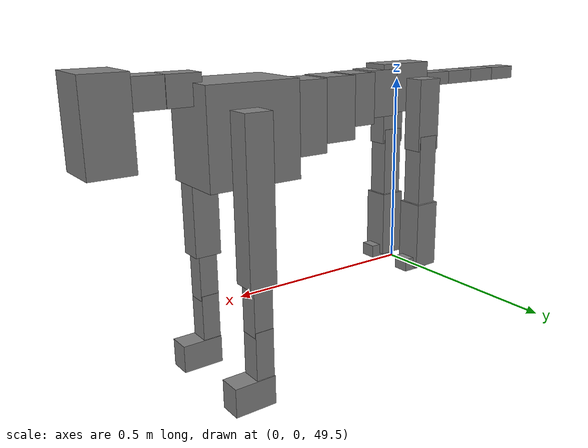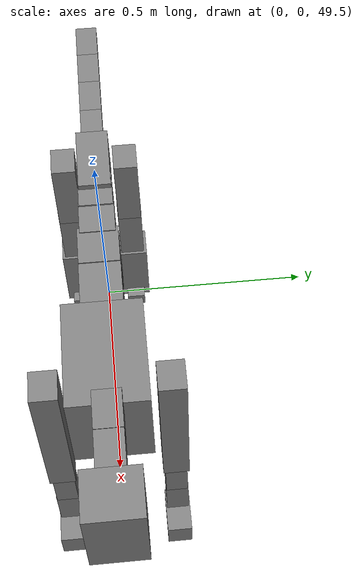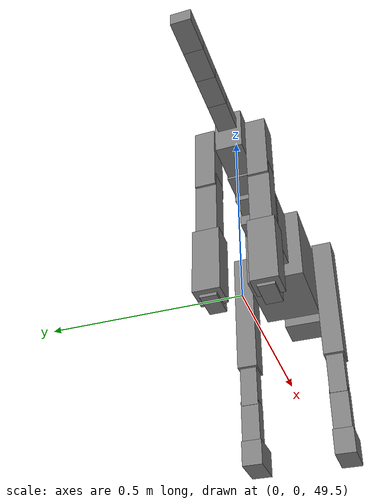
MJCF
<mujoco model="dog">

    <default>
        <joint armature="0.02" stiffness="1" damping="0.2" limited="true"/>
        <geom condim="3" friction="1 0.05 0.05" margin="0.01"/>
        <motor ctrllimited="true" ctrlrange="-1.0 1.0" forcelimited="true" gear="50"/>
    </default>

    <compiler inertiafromgeom="true" angle="radian"/>

    <option timestep="0.016" iterations="50" tolerance="1e-10" solver="Newton" jacobian="dense" cone="pyramidal"/>

    <size nconmax="20000" njmax="60000" nstack="5000000"/>
    <visual>
        <map force="0.1" zfar="30"/>
        <rgba haze="0.15 0.25 0.35 1"/>
        <quality shadowsize="2048"/>
        <global offwidth="800" offheight="800"/>
    </visual>

    <asset>
        <texture type="skybox" builtin="gradient" rgb1="0.3 0.5 0.7" rgb2="0 0 0" width="512" height="512"/>
        <texture name="texplane" type="2d" builtin="checker" rgb1=".2 .3 .4" rgb2=".1 0.15 0.2" width="512" height="512"
                 mark="cross" markrgb=".8 .8 .8"/>
        <texture name="texgeom" type="cube" builtin="flat" mark="cross" width="127" height="1278" rgb1="0.8 0.6 0.4"
                 rgb2="0.8 0.6 0.4" markrgb="1 1 1" random="0.01"/>

        <material name="matplane" reflectance="0.3" texture="texplane" texrepeat="1 1" texuniform="true"/>
        <material name="matgeom" texture="texgeom" texuniform="true" rgba="0.8 0.6 .4 1"/>
    </asset>

    <worldbody>
        <geom name="floor" pos="0 0 0" size="0 0 .25" type="plane" material="matplane" condim="3"/>

        <light directional="false" diffuse=".2 .2 .2" specular="0 0 0" pos="0 0 5" dir="0 0 -1" castshadow="false"/>
        <light mode="targetbodycom" target="torso" directional="false" diffuse=".8 .8 .8" specular="0.3 0.3 0.3"
               pos="0 0 4.0" dir="0 0 -1"/>

        <body name="root" pos="0 0 50">
            <freejoint name="root_1"/>
            <geom type="box" pos="0 0 -0.02" size="0.0774  0.0358  0.063" density="2030"/>

            <body name="spine1" pos="0.054 0 0">
                <joint name="spine1_y" axis="0 1 0" range="0 0.7" limited="true"/>
                <geom type="box" pos="0.02375 0 -0.03" size="0.04375  0.0375  0.05985" density="2030"/>

                <body name="spine2" pos="0.0612 0 0">
                    <joint name="spine2_y" axis="0 1 0" range="-0.15 0.15" limited="true"/>
                    <geom type="box" pos="0.03555  0  -0.04" size="0.04055  0.039  0.06615" density="2030"/>

                    <body name="spine3" pos="0.0730 0 0">
                        <joint name="spine3_y" axis="0 1 0" range="-0.15 0.15" limited="true"/>
                        <geom type="box" pos="0.03555  0  -0.057" size="0.04555  0.0445  0.081" density="2030"/>

                        <body name="spine4" pos="0.0780 0 0">
                            <joint name="spine4_y" axis="0 1 0" range="-0.15 0.15" limited="true"/>
                            <geom type="box" pos="0.05265  0  -0.07" size="0.05265  0.045  0.09135" density="2030"/>

                            <body name="torso" pos="0.1082 0 0">
                                <joint name="torso_y" axis="0 1 0" range="-0.15 0.15" limited="true"/>
                                <geom type="box" pos="0.11925  0  -0.085" size="0.11925  0.085  0.11745"
                                      density="2030"/>

                                <body name="neck1" pos="0.2160  0   0.0180">
                                    <joint name="neck1_y" axis="0 1 0" range="-1.2  -1" limited="true"/>
                                    <geom type="box" pos="0.0423  0  0" size="0.0423  0.03  0.036" density="2325"/>

                                    <body name="neck2" pos="0.0853  0  0">
                                        <joint name="neck2_y" axis="0 1 0" range="0.1  0" limited="true"/>
                                        <geom type="box" pos="0.0423  0  0" size="0.0423  0.03  0.036" density="2325"/>

                                        <body name="head" pos="0.0853  0  0">
                                            <joint name="head_y" axis="0 1 0" range="-0.3  -0.2" limited="true"/>
                                            <geom type="box" pos="0.0531  0  -0.055" size="0.0531  0.06  0.1044"
                                                  density="4030"/>

                                        </body>
                                    </body>
                                </body>

                                <body name="front_shoulder" pos="0.156  0   -0.0480">
                                    <joint name="front_shoulder_y" axis="0 1 0" range="-1 1.5" limited="true"/>
                                    <geom type="box" pos="0 0.13 -0.1703" size="0.0349  0.0298  0.1969" density="1158"/>
                                    <geom type="box" pos="0 -0.13 -0.1703" size="0.0349  0.0298  0.1969"
                                          density="1158"/>

                                    <body name="front_elbow" pos="0  0  -0.3405">
                                        <joint name="front_elbow_y" axis="0 1 0" range="-2 0" limited="true"/>
                                        <geom type="box" pos="0 0.13 -0.0734" size="0.0246  0.0252  0.0734"
                                              density="1081"/>
                                        <geom type="box" pos="0 -0.13 -0.0734" size="0.0246  0.0252  0.0734"
                                              density="1081"/>

                                        <body name="front_wrist" pos="0  0  -0.1468">
                                            <joint name="front_wrist_y" axis="0 1 0" range="-0.2 0" limited="true"/>
                                            <geom type="box" pos="0 0.13 -0.0615" size="0.0238  0.0265  0.0746"
                                                  density="1664"/>
                                            <geom type="box" pos="0 -0.13 -0.0615" size="0.0238  0.0265  0.0746"
                                                  density="1664"/>

                                            <body name="front_finger_end" pos="0  0  -0.1230">
                                                <joint name="front_finger_y" axis="0 1 0" range="-0.4 1"
                                                       limited="true"/>
                                                <geom type="box" pos="0.0293  0.13  -0.0216"
                                                      size="0.0537  0.0293  0.0366" density="1515"/>
                                                <geom type="box" pos="0.0293  -0.13  -0.0216"
                                                      size="0.0537  0.0293  0.0366" density="1515"/>

                                            </body>

                                        </body>
                                    </body>
                                </body>

                            </body>
                        </body>
                    </body>
                </body>
            </body>

            <body name="back_hip" pos="-0.03 0 -0.018">
                <joint name="back_hip_y" axis="0 1 0" range="-1.5 0.3" limited="true"/>
                <geom type="box" pos="0 0.07 -0.0712" size="0.0343  0.0269  0.0940" density="1154"/>
                <geom type="box" pos="0 -0.07 -0.0712" size="0.0343  0.0269  0.0940" density="1154"/>

                <body name="back_knee" pos="0  0  -0.1425">
                    <joint name="back_knee_y" axis="0 1 0" range="0 2.8" limited="true"/>
                    <geom type="box" pos="0 0.07 -0.0899" size="0.0283  0.0279  0.1055" density="1227"/>
                    <geom type="box" pos="0 -0.07 -0.0899" size="0.0283  0.0279  0.1055" density="1227"/>

                    <body name="back_ankle" pos="0  0  -0.1798">
                        <joint name="back_ankle_y" axis="0 1 0" range="-2.2 0" limited="true"/>
                        <geom type="box" pos="0 0.07 -0.0778" size="0.0346  0.0346  0.0891" density="1284"/>
                        <geom type="box" pos="0 -0.07 -0.0778" size="0.0346  0.0346  0.0891" density="1284"/>

                        <body name="back_toe_end" pos="0  0  -0.1557">
                            <joint name="back_toe_y" axis="0 1 0" range="-0.4 1" limited="true"/>
                            <geom type="box" pos="0.0215  0.07  -0.0022" size="0.0395  0.0215  0.0172" density="1515"/>
                            <geom type="box" pos="0.0215  -0.07  -0.0022" size="0.0395  0.0215  0.0172" density="1515"/>

                        </body>
                    </body>
                </body>
            </body>

            <body name="tail1" pos="-0.074 0 -0.006">
                <joint name="tail1_y" axis="0 1 0" range="-0.2 0.2" limited="true"/>
                <geom type="box" pos="-0.0536  0  0" size="0.045  0.025  0.0175" density="1587"/>

                <body name="tail2" pos="-0.09 0 0">
                    <joint name="tail2_y" axis="0 1 0" range="-0.2 0.2" limited="true"/>
                    <geom type="box" pos="-0.0536  0  0" size="0.045  0.025  0.0175" density="1587"/>

                    <body name="tail3" pos="-0.09 0 0">
                        <joint name="tail3_y" axis="0 1 0" range="-0.2 0.2" limited="true"/>
                        <geom type="box" pos="-0.0536  0  0" size="0.045  0.025  0.0175" density="1587"/>

                        <body name="tail4" pos="-0.09 0 0">
                            <joint name="tail4_y" axis="0 1 0" range="-0.2 0.2" limited="true"/>
                            <geom type="box" pos="-0.0536  0  0" size="0.045  0.025  0.0175" density="1587"/>

                        </body>
                    </body>
                </body>
            </body>
        </body>
    </worldbody>

    <actuator>
        <motor joint="spine1_y" forcerange="-150 150     "/>
        <motor joint="spine2_y" forcerange="-150 150     "/>
        <motor joint="spine3_y" forcerange="-150 150     "/>
        <motor joint="spine4_y" forcerange="-150 150     "/>
        <motor joint="torso_y" forcerange="-150 150     "/>
        <motor joint="neck1_y" forcerange="-100 100       "/>
        <motor joint="neck2_y" forcerange="-100 100       "/>
        <motor joint="head_y" forcerange="-150 150       "/>
        <motor joint="front_shoulder_y" forcerange="-168.63 130.27"/>
        <motor joint="front_elbow_y" forcerange="-148.26 134.91"/>
        <motor joint="front_wrist_y" forcerange="-105.33 106.64"/>
        <motor joint="front_finger_y" forcerange="-76.79 39.30"/>
        <motor joint="back_hip_y" forcerange="-331.87 227.04"/>
        <motor joint="back_knee_y" forcerange="-250.43 355.76"/>
        <motor joint="back_angle_y" forcerange="-222.08 231.61"/>
        <motor joint="back_toe_y" forcerange="-71.97 20.37"/>
        <motor joint="tail1_y" forcerange="-50 50     "/>
        <motor joint="tail2_y" forcerange="-50 50     "/>
        <motor joint="tail3_y" forcerange="-50 50     "/>
        <motor joint="tail4_y" forcerange="-50 50     "/>
    </actuator>
</mujoco>
